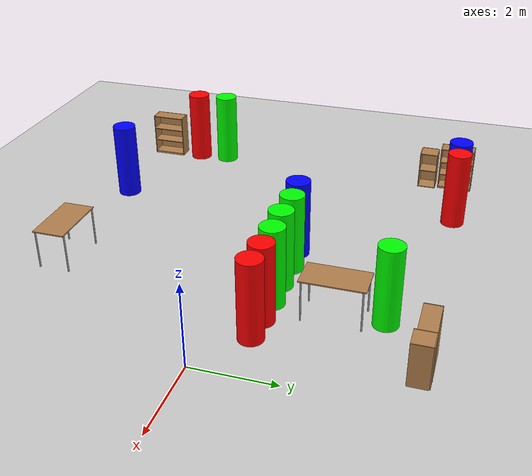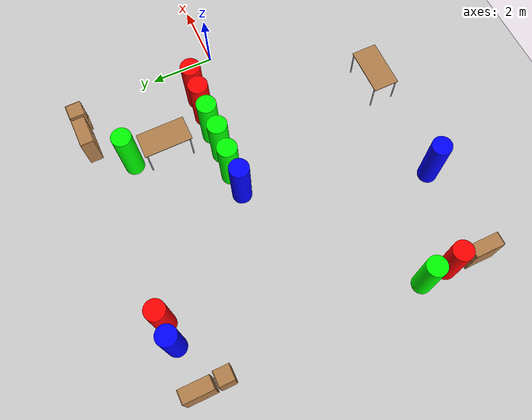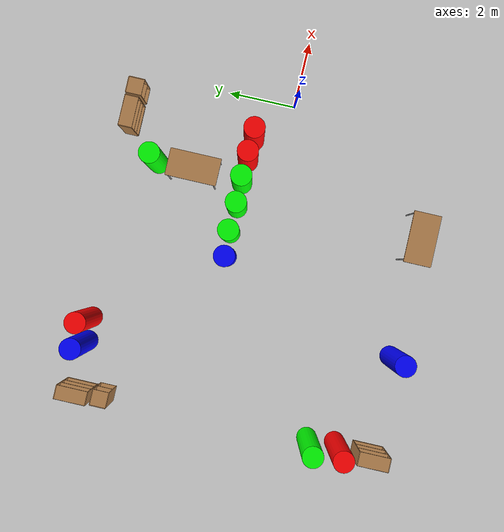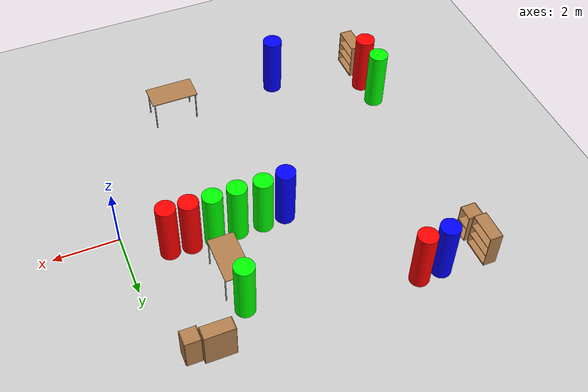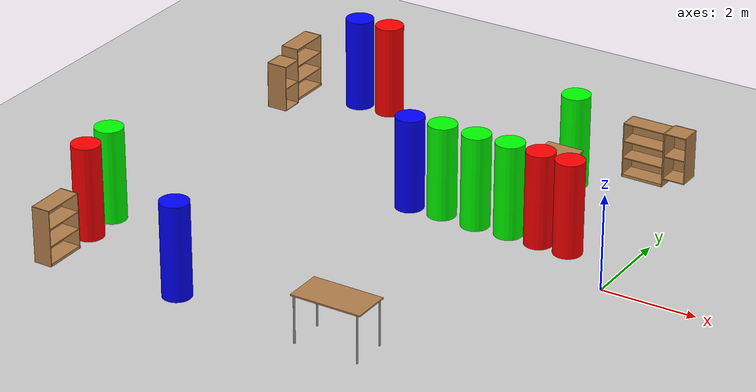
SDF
<sdf version="1.6">
 <world name="default">
  <model name="ground_plane">
   <static>1</static>
   <link name="link">
    <collision name="collision">
     <geometry><plane><normal>0 0 1</normal><size>100 100</size></plane></geometry>
     <surface>
      <contact><collide_bitmask>65535</collide_bitmask></contact>
      <friction><ode><mu>100</mu><mu2>50</mu2></ode></friction>
     </surface>
    </collision>
    <visual name="visual">
     <cast_shadows>0</cast_shadows>
     <geometry><plane><normal>0 0 1</normal><size>100 100</size></plane></geometry>
     <material>
      <script><uri>file://media/materials/scripts/gazebo.material</uri><name>Gazebo/Grey</name></script>
     </material>
    </visual>
   </link>
  </model>
  <model name="bookshelf0">
   <static>1</static>
   <link name="link">
    <inertial><mass>1</mass></inertial>
    <collision name="back">
     <pose>0 0.005 0.6 0 -0 0</pose>
     <geometry><box><size>0.9 0.01 1.2</size></box></geometry>
    </collision>
    <visual name="visual1">
     <pose>0 0.005 0.6 0 -0 0</pose>
     <geometry><box><size>0.9 0.01 1.2</size></box></geometry>
     <material>
      <script><uri>file://media/materials/scripts/gazebo.material</uri><name>Gazebo/Wood</name></script>
     </material>
    </visual>
    <collision name="left_side">
     <pose>0.45 -0.195 0.6 0 -0 0</pose>
     <geometry><box><size>0.02 0.4 1.2</size></box></geometry>
    </collision>
    <visual name="visual2">
     <pose>0.45 -0.195 0.6 0 -0 0</pose>
     <geometry><box><size>0.02 0.4 1.2</size></box></geometry>
     <material>
      <script><uri>file://media/materials/scripts/gazebo.material</uri><name>Gazebo/Wood</name></script>
     </material>
    </visual>
    <collision name="right_side">
     <pose>-0.45 -0.195 0.6 0 -0 0</pose>
     <geometry><box><size>0.02 0.4 1.2</size></box></geometry>
    </collision>
    <visual name="visual3">
     <pose>-0.45 -0.195 0.6 0 -0 0</pose>
     <geometry><box><size>0.02 0.4 1.2</size></box></geometry>
     <material>
      <script><uri>file://media/materials/scripts/gazebo.material</uri><name>Gazebo/Wood</name></script>
     </material>
    </visual>
    <collision name="bottom">
     <pose>0 -0.195 0.03 0 -0 0</pose>
     <geometry><box><size>0.88 0.4 0.06</size></box></geometry>
    </collision>
    <visual name="visual4">
     <pose>0 -0.195 0.03 0 -0 0</pose>
     <geometry><box><size>0.88 0.4 0.06</size></box></geometry>
     <material>
      <script><uri>file://media/materials/scripts/gazebo.material</uri><name>Gazebo/Wood</name></script>
     </material>
    </visual>
    <collision name="top">
     <pose>0 -0.195 1.19 0 -0 0</pose>
     <geometry><box><size>0.88 0.4 0.02</size></box></geometry>
    </collision>
    <visual name="visual5">
     <pose>0 -0.195 1.19 0 -0 0</pose>
     <geometry><box><size>0.88 0.4 0.02</size></box></geometry>
     <material>
      <script><uri>file://media/materials/scripts/gazebo.material</uri><name>Gazebo/Wood</name></script>
     </material>
    </visual>
    <collision name="low_shelf">
     <pose>0 -0.195 0.43 0 -0 0</pose>
     <geometry><box><size>0.88 0.4 0.02</size></box></geometry>
    </collision>
    <visual name="visual6">
     <pose>0 -0.195 0.43 0 -0 0</pose>
     <geometry><box><size>0.88 0.4 0.02</size></box></geometry>
     <material>
      <script><uri>file://media/materials/scripts/gazebo.material</uri><name>Gazebo/Wood</name></script>
     </material>
    </visual>
    <collision name="high_shelf">
     <pose>0 -0.195 0.8 0 -0 0</pose>
     <geometry><box><size>0.88 0.4 0.02</size></box></geometry>
    </collision>
    <visual name="visual7">
     <pose>0 -0.195 0.8 0 -0 0</pose>
     <geometry><box><size>0.88 0.4 0.02</size></box></geometry>
     <material>
      <script><uri>file://media/materials/scripts/gazebo.material</uri><name>Gazebo/Wood</name></script>
     </material>
    </visual>
   </link>
   <pose>-9.72657 -4.37218 0 0 -0 1.5708</pose>
  </model>
  <model name="bookshelf1">
   <static>1</static>
   <link name="link">
    <inertial><mass>1</mass></inertial>
    <collision name="back">
     <pose>0 0.005 0.6 0 -0 0</pose>
     <geometry><box><size>0.9 0.01 1.2</size></box></geometry>
    </collision>
    <visual name="visual1">
     <pose>0 0.005 0.6 0 -0 0</pose>
     <geometry><box><size>0.9 0.01 1.2</size></box></geometry>
     <material>
      <script><uri>file://media/materials/scripts/gazebo.material</uri><name>Gazebo/Wood</name></script>
     </material>
    </visual>
    <collision name="left_side">
     <pose>0.45 -0.195 0.6 0 -0 0</pose>
     <geometry><box><size>0.02 0.4 1.2</size></box></geometry>
    </collision>
    <visual name="visual2">
     <pose>0.45 -0.195 0.6 0 -0 0</pose>
     <geometry><box><size>0.02 0.4 1.2</size></box></geometry>
     <material>
      <script><uri>file://media/materials/scripts/gazebo.material</uri><name>Gazebo/Wood</name></script>
     </material>
    </visual>
    <collision name="right_side">
     <pose>-0.45 -0.195 0.6 0 -0 0</pose>
     <geometry><box><size>0.02 0.4 1.2</size></box></geometry>
    </collision>
    <visual name="visual3">
     <pose>-0.45 -0.195 0.6 0 -0 0</pose>
     <geometry><box><size>0.02 0.4 1.2</size></box></geometry>
     <material>
      <script><uri>file://media/materials/scripts/gazebo.material</uri><name>Gazebo/Wood</name></script>
     </material>
    </visual>
    <collision name="bottom">
     <pose>0 -0.195 0.03 0 -0 0</pose>
     <geometry><box><size>0.88 0.4 0.06</size></box></geometry>
    </collision>
    <visual name="visual4">
     <pose>0 -0.195 0.03 0 -0 0</pose>
     <geometry><box><size>0.88 0.4 0.06</size></box></geometry>
     <material>
      <script><uri>file://media/materials/scripts/gazebo.material</uri><name>Gazebo/Wood</name></script>
     </material>
    </visual>
    <collision name="top">
     <pose>0 -0.195 1.19 0 -0 0</pose>
     <geometry><box><size>0.88 0.4 0.02</size></box></geometry>
    </collision>
    <visual name="visual5">
     <pose>0 -0.195 1.19 0 -0 0</pose>
     <geometry><box><size>0.88 0.4 0.02</size></box></geometry>
     <material>
      <script><uri>file://media/materials/scripts/gazebo.material</uri><name>Gazebo/Wood</name></script>
     </material>
    </visual>
    <collision name="low_shelf">
     <pose>0 -0.195 0.43 0 -0 0</pose>
     <geometry><box><size>0.88 0.4 0.02</size></box></geometry>
    </collision>
    <visual name="visual6">
     <pose>0 -0.195 0.43 0 -0 0</pose>
     <geometry><box><size>0.88 0.4 0.02</size></box></geometry>
     <material>
      <script><uri>file://media/materials/scripts/gazebo.material</uri><name>Gazebo/Wood</name></script>
     </material>
    </visual>
    <collision name="high_shelf">
     <pose>0 -0.195 0.8 0 -0 0</pose>
     <geometry><box><size>0.88 0.4 0.02</size></box></geometry>
    </collision>
    <visual name="visual7">
     <pose>0 -0.195 0.8 0 -0 0</pose>
     <geometry><box><size>0.88 0.4 0.02</size></box></geometry>
     <material>
      <script><uri>file://media/materials/scripts/gazebo.material</uri><name>Gazebo/Wood</name></script>
     </material>
    </visual>
   </link>
   <pose>-1.44327 4.80493 0 0 -0 4e-06</pose>
  </model>
  <model name="bookshelf4">
   <static>1</static>
   <link name="link">
    <inertial><mass>1</mass></inertial>
    <collision name="back">
     <pose>0 0.005 0.6 0 -0 0</pose>
     <geometry><box><size>0.9 0.01 1.2</size></box></geometry>
    </collision>
    <visual name="visual1">
     <pose>0 0.005 0.6 0 -0 0</pose>
     <geometry><box><size>0.9 0.01 1.2</size></box></geometry>
     <material>
      <script><uri>file://media/materials/scripts/gazebo.material</uri><name>Gazebo/Wood</name></script>
     </material>
    </visual>
    <collision name="left_side">
     <pose>0.45 -0.195 0.6 0 -0 0</pose>
     <geometry><box><size>0.02 0.4 1.2</size></box></geometry>
    </collision>
    <visual name="visual2">
     <pose>0.45 -0.195 0.6 0 -0 0</pose>
     <geometry><box><size>0.02 0.4 1.2</size></box></geometry>
     <material>
      <script><uri>file://media/materials/scripts/gazebo.material</uri><name>Gazebo/Wood</name></script>
     </material>
    </visual>
    <collision name="right_side">
     <pose>-0.45 -0.195 0.6 0 -0 0</pose>
     <geometry><box><size>0.02 0.4 1.2</size></box></geometry>
    </collision>
    <visual name="visual3">
     <pose>-0.45 -0.195 0.6 0 -0 0</pose>
     <geometry><box><size>0.02 0.4 1.2</size></box></geometry>
     <material>
      <script><uri>file://media/materials/scripts/gazebo.material</uri><name>Gazebo/Wood</name></script>
     </material>
    </visual>
    <collision name="bottom">
     <pose>0 -0.195 0.03 0 -0 0</pose>
     <geometry><box><size>0.88 0.4 0.06</size></box></geometry>
    </collision>
    <visual name="visual4">
     <pose>0 -0.195 0.03 0 -0 0</pose>
     <geometry><box><size>0.88 0.4 0.06</size></box></geometry>
     <material>
      <script><uri>file://media/materials/scripts/gazebo.material</uri><name>Gazebo/Wood</name></script>
     </material>
    </visual>
    <collision name="top">
     <pose>0 -0.195 1.19 0 -0 0</pose>
     <geometry><box><size>0.88 0.4 0.02</size></box></geometry>
    </collision>
    <visual name="visual5">
     <pose>0 -0.195 1.19 0 -0 0</pose>
     <geometry><box><size>0.88 0.4 0.02</size></box></geometry>
     <material>
      <script><uri>file://media/materials/scripts/gazebo.material</uri><name>Gazebo/Wood</name></script>
     </material>
    </visual>
    <collision name="low_shelf">
     <pose>0 -0.195 0.43 0 -0 0</pose>
     <geometry><box><size>0.88 0.4 0.02</size></box></geometry>
    </collision>
    <visual name="visual6">
     <pose>0 -0.195 0.43 0 -0 0</pose>
     <geometry><box><size>0.88 0.4 0.02</size></box></geometry>
     <material>
      <script><uri>file://media/materials/scripts/gazebo.material</uri><name>Gazebo/Wood</name></script>
     </material>
    </visual>
    <collision name="high_shelf">
     <pose>0 -0.195 0.8 0 -0 0</pose>
     <geometry><box><size>0.88 0.4 0.02</size></box></geometry>
    </collision>
    <visual name="visual7">
     <pose>0 -0.195 0.8 0 -0 0</pose>
     <geometry><box><size>0.88 0.4 0.02</size></box></geometry>
     <material>
      <script><uri>file://media/materials/scripts/gazebo.material</uri><name>Gazebo/Wood</name></script>
     </material>
    </visual>
   </link>
   <pose>-9.82487 4.34326 0 0 -0 1.5708</pose>
  </model>
  <model name="cabinet3">
   <static>1</static>
   <link name="cabinet_bottom_plate">
    <inertial>
     <pose>0 0 -1 0 -0 0</pose>
     <inertia><ixx>2.05</ixx><ixy>0</ixy><ixz>0</ixz><iyy>2.05</iyy><iyz>0</iyz><izz>2.05</izz></inertia>
     <mass>25</mass>
    </inertial>
    <collision name="cabinet_bottom_plate_geom">
     <pose>0 0 0.01 0 -0 0</pose>
     <geometry><box><size>0.45 0.45 0.02</size></box></geometry>
    </collision>
    <visual name="cabinet_bottom_plate_geom_visual">
     <pose>0 0 0.01 0 -0 0</pose>
     <geometry><box><size>0.45 0.45 0.02</size></box></geometry>
     <material>
      <script><uri>file://media/materials/scripts/gazebo.material</uri><name>Gazebo/Wood</name></script>
     </material>
    </visual>
    <collision name="cabinet_bottom_plate_geom_cabinet_back_plate">
     <pose>0.235 0 0.51 0 -0 0</pose>
     <geometry><box><size>0.02 0.45 1.02</size></box></geometry>
    </collision>
    <visual name="cabinet_bottom_plate_geom_cabinet_back_plate_visual">
     <pose>0.235 0 0.51 0 -0 0</pose>
     <geometry><box><size>0.02 0.45 1.02</size></box></geometry>
     <material>
      <script><uri>file://media/materials/scripts/gazebo.material</uri><name>Gazebo/Wood</name></script>
     </material>
    </visual>
    <collision name="cabinet_bottom_plate_geom_cabinet_left_plate">
     <pose>0 0.235 0.51 0 -0 0</pose>
     <geometry><box><size>0.45 0.02 1.02</size></box></geometry>
    </collision>
    <visual name="cabinet_bottom_plate_geom_cabinet_left_plate_visual">
     <pose>0 0.235 0.51 0 -0 0</pose>
     <geometry><box><size>0.45 0.02 1.02</size></box></geometry>
     <material>
      <script><uri>file://media/materials/scripts/gazebo.material</uri><name>Gazebo/Wood</name></script>
     </material>
    </visual>
    <collision name="cabinet_bottom_plate_geom_cabinet_middle_plate">
     <pose>0 0 0.51 0 -0 0</pose>
     <geometry><box><size>0.45 0.45 0.02</size></box></geometry>
    </collision>
    <visual name="cabinet_bottom_plate_geom_cabinet_middle_plate_visual">
     <pose>0 0 0.51 0 -0 0</pose>
     <geometry><box><size>0.45 0.45 0.02</size></box></geometry>
     <material>
      <script><uri>file://media/materials/scripts/gazebo.material</uri><name>Gazebo/Wood</name></script>
     </material>
    </visual>
    <collision name="cabinet_bottom_plate_geom_cabinet_right_plate">
     <pose>0 -0.235 0.51 0 -0 0</pose>
     <geometry><box><size>0.45 0.02 1.02</size></box></geometry>
    </collision>
    <visual name="cabinet_bottom_plate_geom_cabinet_right_plate_visual">
     <pose>0 -0.235 0.51 0 -0 0</pose>
     <geometry><box><size>0.45 0.02 1.02</size></box></geometry>
     <material>
      <script><uri>file://media/materials/scripts/gazebo.material</uri><name>Gazebo/Wood</name></script>
     </material>
    </visual>
    <collision name="cabinet_bottom_plate_geom_cabinet_top_plate">
     <pose>0 0 1.01 0 -0 0</pose>
     <geometry><box><size>0.45 0.45 0.02</size></box></geometry>
    </collision>
    <visual name="cabinet_bottom_plate_geom_cabinet_top_plate_visual">
     <pose>0 0 1.01 0 -0 0</pose>
     <geometry><box><size>0.45 0.45 0.02</size></box></geometry>
     <material>
      <script><uri>file://media/materials/scripts/gazebo.material</uri><name>Gazebo/Wood</name></script>
     </material>
    </visual>
   </link>
   <pose>-9.58857 3.57077 0 0 0 -3.14159</pose>
  </model>
  <model name="cabinet4">
   <static>1</static>
   <link name="cabinet_bottom_plate">
    <inertial>
     <pose>0 0 -1 0 -0 0</pose>
     <inertia><ixx>2.05</ixx><ixy>0</ixy><ixz>0</ixz><iyy>2.05</iyy><iyz>0</iyz><izz>2.05</izz></inertia>
     <mass>25</mass>
    </inertial>
    <collision name="cabinet_bottom_plate_geom">
     <pose>0 0 0.01 0 -0 0</pose>
     <geometry><box><size>0.45 0.45 0.02</size></box></geometry>
    </collision>
    <visual name="cabinet_bottom_plate_geom_visual">
     <pose>0 0 0.01 0 -0 0</pose>
     <geometry><box><size>0.45 0.45 0.02</size></box></geometry>
     <material>
      <script><uri>file://media/materials/scripts/gazebo.material</uri><name>Gazebo/Wood</name></script>
     </material>
    </visual>
    <collision name="cabinet_bottom_plate_geom_cabinet_back_plate">
     <pose>0.235 0 0.51 0 -0 0</pose>
     <geometry><box><size>0.02 0.45 1.02</size></box></geometry>
    </collision>
    <visual name="cabinet_bottom_plate_geom_cabinet_back_plate_visual">
     <pose>0.235 0 0.51 0 -0 0</pose>
     <geometry><box><size>0.02 0.45 1.02</size></box></geometry>
     <material>
      <script><uri>file://media/materials/scripts/gazebo.material</uri><name>Gazebo/Wood</name></script>
     </material>
    </visual>
    <collision name="cabinet_bottom_plate_geom_cabinet_left_plate">
     <pose>0 0.235 0.51 0 -0 0</pose>
     <geometry><box><size>0.45 0.02 1.02</size></box></geometry>
    </collision>
    <visual name="cabinet_bottom_plate_geom_cabinet_left_plate_visual">
     <pose>0 0.235 0.51 0 -0 0</pose>
     <geometry><box><size>0.45 0.02 1.02</size></box></geometry>
     <material>
      <script><uri>file://media/materials/scripts/gazebo.material</uri><name>Gazebo/Wood</name></script>
     </material>
    </visual>
    <collision name="cabinet_bottom_plate_geom_cabinet_middle_plate">
     <pose>0 0 0.51 0 -0 0</pose>
     <geometry><box><size>0.45 0.45 0.02</size></box></geometry>
    </collision>
    <visual name="cabinet_bottom_plate_geom_cabinet_middle_plate_visual">
     <pose>0 0 0.51 0 -0 0</pose>
     <geometry><box><size>0.45 0.45 0.02</size></box></geometry>
     <material>
      <script><uri>file://media/materials/scripts/gazebo.material</uri><name>Gazebo/Wood</name></script>
     </material>
    </visual>
    <collision name="cabinet_bottom_plate_geom_cabinet_right_plate">
     <pose>0 -0.235 0.51 0 -0 0</pose>
     <geometry><box><size>0.45 0.02 1.02</size></box></geometry>
    </collision>
    <visual name="cabinet_bottom_plate_geom_cabinet_right_plate_visual">
     <pose>0 -0.235 0.51 0 -0 0</pose>
     <geometry><box><size>0.45 0.02 1.02</size></box></geometry>
     <material>
      <script><uri>file://media/materials/scripts/gazebo.material</uri><name>Gazebo/Wood</name></script>
     </material>
    </visual>
    <collision name="cabinet_bottom_plate_geom_cabinet_top_plate">
     <pose>0 0 1.01 0 -0 0</pose>
     <geometry><box><size>0.45 0.45 0.02</size></box></geometry>
    </collision>
    <visual name="cabinet_bottom_plate_geom_cabinet_top_plate_visual">
     <pose>0 0 1.01 0 -0 0</pose>
     <geometry><box><size>0.45 0.45 0.02</size></box></geometry>
     <material>
      <script><uri>file://media/materials/scripts/gazebo.material</uri><name>Gazebo/Wood</name></script>
     </material>
    </visual>
   </link>
   <pose>-0.709182 4.57421 0.217313 0 -0 1.5708</pose>
  </model>
  <model name="table0">
   <static>1</static>
   <link name="link">
    <collision name="surface">
     <pose>0 0 1 0 -0 0</pose>
     <geometry><box><size>1.5 0.8 0.03</size></box></geometry>
     <surface><friction><ode><mu>0.6</mu><mu2>0.6</mu2></ode></friction></surface>
    </collision>
    <visual name="visual1">
     <pose>0 0 1 0 -0 0</pose>
     <geometry><box><size>1.5 0.8 0.03</size></box></geometry>
     <material>
      <script><uri>file://media/materials/scripts/gazebo.material</uri><name>Gazebo/Wood</name></script>
     </material>
    </visual>
    <collision name="front_left_leg">
     <pose>0.68 0.38 0.5 0 -0 0</pose>
     <geometry><cylinder><radius>0.02</radius><length>1</length></cylinder></geometry>
    </collision>
    <visual name="front_left_leg">
     <pose>0.68 0.38 0.5 0 -0 0</pose>
     <geometry><cylinder><radius>0.02</radius><length>1</length></cylinder></geometry>
     <material>
      <script><uri>file://media/materials/scripts/gazebo.material</uri><name>Gazebo/Grey</name></script>
     </material>
    </visual>
    <collision name="front_right_leg">
     <pose>0.68 -0.38 0.5 0 -0 0</pose>
     <geometry><cylinder><radius>0.02</radius><length>1</length></cylinder></geometry>
    </collision>
    <visual name="front_right_leg">
     <pose>0.68 -0.38 0.5 0 -0 0</pose>
     <geometry><cylinder><radius>0.02</radius><length>1</length></cylinder></geometry>
     <material>
      <script><uri>file://media/materials/scripts/gazebo.material</uri><name>Gazebo/Grey</name></script>
     </material>
    </visual>
    <collision name="back_right_leg">
     <pose>-0.68 -0.38 0.5 0 -0 0</pose>
     <geometry><cylinder><radius>0.02</radius><length>1</length></cylinder></geometry>
    </collision>
    <visual name="back_right_leg">
     <pose>-0.68 -0.38 0.5 0 -0 0</pose>
     <geometry><cylinder><radius>0.02</radius><length>1</length></cylinder></geometry>
     <material>
      <script><uri>file://media/materials/scripts/gazebo.material</uri><name>Gazebo/Grey</name></script>
     </material>
    </visual>
    <collision name="back_left_leg">
     <pose>-0.68 0.38 0.5 0 -0 0</pose>
     <geometry><cylinder><radius>0.02</radius><length>1</length></cylinder></geometry>
    </collision>
    <visual name="back_left_leg">
     <pose>-0.68 0.38 0.5 0 -0 0</pose>
     <geometry><cylinder><radius>0.02</radius><length>1</length></cylinder></geometry>
     <material>
      <script><uri>file://media/materials/scripts/gazebo.material</uri><name>Gazebo/Grey</name></script>
     </material>
    </visual>
   </link>
   <pose>-3.10587 -4.3899 0 0 -0 0</pose>
  </model>
  <model name="table2">
   <static>1</static>
   <link name="link">
    <collision name="surface">
     <pose>0 0 1 0 -0 0</pose>
     <geometry><box><size>1.5 0.8 0.03</size></box></geometry>
     <surface><friction><ode><mu>0.6</mu><mu2>0.6</mu2></ode></friction></surface>
    </collision>
    <visual name="visual1">
     <pose>0 0 1 0 -0 0</pose>
     <geometry><box><size>1.5 0.8 0.03</size></box></geometry>
     <material>
      <script><uri>file://media/materials/scripts/gazebo.material</uri><name>Gazebo/Wood</name></script>
     </material>
    </visual>
    <collision name="front_left_leg">
     <pose>0.68 0.38 0.5 0 -0 0</pose>
     <geometry><cylinder><radius>0.02</radius><length>1</length></cylinder></geometry>
    </collision>
    <visual name="front_left_leg">
     <pose>0.68 0.38 0.5 0 -0 0</pose>
     <geometry><cylinder><radius>0.02</radius><length>1</length></cylinder></geometry>
     <material>
      <script><uri>file://media/materials/scripts/gazebo.material</uri><name>Gazebo/Grey</name></script>
     </material>
    </visual>
    <collision name="front_right_leg">
     <pose>0.68 -0.38 0.5 0 -0 0</pose>
     <geometry><cylinder><radius>0.02</radius><length>1</length></cylinder></geometry>
    </collision>
    <visual name="front_right_leg">
     <pose>0.68 -0.38 0.5 0 -0 0</pose>
     <geometry><cylinder><radius>0.02</radius><length>1</length></cylinder></geometry>
     <material>
      <script><uri>file://media/materials/scripts/gazebo.material</uri><name>Gazebo/Grey</name></script>
     </material>
    </visual>
    <collision name="back_right_leg">
     <pose>-0.68 -0.38 0.5 0 -0 0</pose>
     <geometry><cylinder><radius>0.02</radius><length>1</length></cylinder></geometry>
    </collision>
    <visual name="back_right_leg">
     <pose>-0.68 -0.38 0.5 0 -0 0</pose>
     <geometry><cylinder><radius>0.02</radius><length>1</length></cylinder></geometry>
     <material>
      <script><uri>file://media/materials/scripts/gazebo.material</uri><name>Gazebo/Grey</name></script>
     </material>
    </visual>
    <collision name="back_left_leg">
     <pose>-0.68 0.38 0.5 0 -0 0</pose>
     <geometry><cylinder><radius>0.02</radius><length>1</length></cylinder></geometry>
    </collision>
    <visual name="back_left_leg">
     <pose>-0.68 0.38 0.5 0 -0 0</pose>
     <geometry><cylinder><radius>0.02</radius><length>1</length></cylinder></geometry>
     <material>
      <script><uri>file://media/materials/scripts/gazebo.material</uri><name>Gazebo/Grey</name></script>
     </material>
    </visual>
   </link>
   <pose>-2.56034 2.47234 0 0 -0 1.5708</pose>
  </model>
  <model name="red0">
   <link name="link">
    <pose>-0.202221 0.506091 0 0 -0 0</pose>
    <inertial>
     <mass>1</mass>
     <inertia><ixx>0.145833</ixx><ixy>0</ixy><ixz>0</ixz><iyy>0.145833</iyy><iyz>0</iyz><izz>0.125</izz></inertia>
    </inertial>
    <visual name="visual">
     <geometry><cylinder><radius>0.3</radius><length>2</length></cylinder></geometry>
     <material>
      <script><name>Gazebo/Grey</name><uri>file://media/materials/scripts/gazebo.material</uri></script>
      <ambient>1 0 0 1</ambient>
      <diffuse>0.7 0.7 0.7 1</diffuse>
      <specular>0.01 0.01 0.01 1</specular>
      <emissive>0 0 0 1</emissive>
      <shader type="vertex"><normal_map>__default__</normal_map></shader>
     </material>
    </visual>
    <collision name="collision">
     <geometry><cylinder><radius>0.3</radius><length>2</length></cylinder></geometry>
     <surface>
      <friction>
       <ode><mu>1</mu><mu2>1</mu2><fdir1>0 0 0</fdir1><slip1>0</slip1><slip2>0</slip2></ode>
       <torsional>
        <coefficient>1</coefficient>
        <patch_radius>0</patch_radius>
        <surface_radius>0</surface_radius>
        <use_patch_radius>1</use_patch_radius>
        <ode><slip>0</slip></ode>
       </torsional>
      </friction>
      <bounce><restitution_coefficient>0</restitution_coefficient><threshold>1e+06</threshold></bounce>
      <contact>
       <collide_without_contact>0</collide_without_contact>
       <collide_without_contact_bitmask>1</collide_without_contact_bitmask>
       <collide_bitmask>1</collide_bitmask>
       <ode>
        <soft_cfm>0</soft_cfm>
        <soft_erp>0.2</soft_erp>
        <kp>1e+13</kp>
        <kd>1</kd>
        <max_vel>0.01</max_vel>
        <min_depth>0</min_depth>
       </ode>
       <bullet>
        <split_impulse>1</split_impulse>
        <split_impulse_penetration_threshold>-0.01</split_impulse_penetration_threshold>
        <soft_cfm>0</soft_cfm>
        <soft_erp>0.2</soft_erp>
        <kp>1e+13</kp>
        <kd>1</kd>
       </bullet>
      </contact>
     </surface>
    </collision>
   </link>
   <static>0</static>
   <pose>-1.05722 0.467521 0.999991 0 -0 2e-05</pose>
  </model>
  <model name="red1">
   <link name="link">
    <pose>-0.202221 0.506091 0 0 -0 0</pose>
    <inertial>
     <mass>1</mass>
     <inertia><ixx>0.145833</ixx><ixy>0</ixy><ixz>0</ixz><iyy>0.145833</iyy><iyz>0</iyz><izz>0.125</izz></inertia>
    </inertial>
    <visual name="visual">
     <geometry><cylinder><radius>0.3</radius><length>2</length></cylinder></geometry>
     <material>
      <script><name>Gazebo/Grey</name><uri>file://media/materials/scripts/gazebo.material</uri></script>
      <ambient>1 0 0 1</ambient>
      <diffuse>0.7 0.7 0.7 1</diffuse>
      <specular>0.01 0.01 0.01 1</specular>
      <emissive>0 0 0 1</emissive>
      <shader type="vertex"><normal_map>__default__</normal_map></shader>
     </material>
    </visual>
    <collision name="collision">
     <geometry><cylinder><radius>0.3</radius><length>2</length></cylinder></geometry>
     <surface>
      <friction>
       <ode><mu>1</mu><mu2>1</mu2><fdir1>0 0 0</fdir1><slip1>0</slip1><slip2>0</slip2></ode>
       <torsional>
        <coefficient>1</coefficient>
        <patch_radius>0</patch_radius>
        <surface_radius>0</surface_radius>
        <use_patch_radius>1</use_patch_radius>
        <ode><slip>0</slip></ode>
       </torsional>
      </friction>
      <bounce><restitution_coefficient>0</restitution_coefficient><threshold>1e+06</threshold></bounce>
      <contact>
       <collide_without_contact>0</collide_without_contact>
       <collide_without_contact_bitmask>1</collide_without_contact_bitmask>
       <collide_bitmask>1</collide_bitmask>
       <ode>
        <soft_cfm>0</soft_cfm>
        <soft_erp>0.2</soft_erp>
        <kp>1e+13</kp>
        <kd>1</kd>
        <max_vel>0.01</max_vel>
        <min_depth>0</min_depth>
       </ode>
       <bullet>
        <split_impulse>1</split_impulse>
        <split_impulse_penetration_threshold>-0.01</split_impulse_penetration_threshold>
        <soft_cfm>0</soft_cfm>
        <soft_erp>0.2</soft_erp>
        <kp>1e+13</kp>
        <kd>1</kd>
       </bullet>
      </contact>
     </surface>
    </collision>
   </link>
   <static>0</static>
   <pose>-1.71762 0.500471 0.999991 0 -0 7e-06</pose>
  </model>
  <model name="red2">
   <link name="link">
    <pose>-0.202221 0.506091 0 0 -0 0</pose>
    <inertial>
     <mass>1</mass>
     <inertia><ixx>0.145833</ixx><ixy>0</ixy><ixz>0</ixz><iyy>0.145833</iyy><iyz>0</iyz><izz>0.125</izz></inertia>
    </inertial>
    <visual name="visual">
     <geometry><cylinder><radius>0.3</radius><length>2</length></cylinder></geometry>
     <material>
      <script><name>Gazebo/Grey</name><uri>file://media/materials/scripts/gazebo.material</uri></script>
      <ambient>1 0 0 1</ambient>
      <diffuse>0.7 0.7 0.7 1</diffuse>
      <specular>0.01 0.01 0.01 1</specular>
      <emissive>0 0 0 1</emissive>
      <shader type="vertex"><normal_map>__default__</normal_map></shader>
     </material>
    </visual>
    <collision name="collision">
     <geometry><cylinder><radius>0.3</radius><length>2</length></cylinder></geometry>
     <surface>
      <friction>
       <ode><mu>1</mu><mu2>1</mu2><fdir1>0 0 0</fdir1><slip1>0</slip1><slip2>0</slip2></ode>
       <torsional>
        <coefficient>1</coefficient>
        <patch_radius>0</patch_radius>
        <surface_radius>0</surface_radius>
        <use_patch_radius>1</use_patch_radius>
        <ode><slip>0</slip></ode>
       </torsional>
      </friction>
      <bounce><restitution_coefficient>0</restitution_coefficient><threshold>1e+06</threshold></bounce>
      <contact>
       <collide_without_contact>0</collide_without_contact>
       <collide_without_contact_bitmask>1</collide_without_contact_bitmask>
       <collide_bitmask>1</collide_bitmask>
       <ode>
        <soft_cfm>0</soft_cfm>
        <soft_erp>0.2</soft_erp>
        <kp>1e+13</kp>
        <kd>1</kd>
        <max_vel>0.01</max_vel>
        <min_depth>0</min_depth>
       </ode>
       <bullet>
        <split_impulse>1</split_impulse>
        <split_impulse_penetration_threshold>-0.01</split_impulse_penetration_threshold>
        <soft_cfm>0</soft_cfm>
        <soft_erp>0.2</soft_erp>
        <kp>1e+13</kp>
        <kd>1</kd>
       </bullet>
      </contact>
     </surface>
    </collision>
   </link>
   <static>0</static>
   <pose>-9.30105 -3.88425 0.999991 0 -0 1.6e-05</pose>
  </model>
  <model name="red3">
   <link name="link">
    <pose>-0.202221 0.506091 0 0 -0 0</pose>
    <inertial>
     <mass>1</mass>
     <inertia><ixx>0.145833</ixx><ixy>0</ixy><ixz>0</ixz><iyy>0.145833</iyy><iyz>0</iyz><izz>0.125</izz></inertia>
    </inertial>
    <visual name="visual">
     <geometry><cylinder><radius>0.3</radius><length>2</length></cylinder></geometry>
     <material>
      <script><name>Gazebo/Grey</name><uri>file://media/materials/scripts/gazebo.material</uri></script>
      <ambient>1 0 0 1</ambient>
      <diffuse>0.7 0.7 0.7 1</diffuse>
      <specular>0.01 0.01 0.01 1</specular>
      <emissive>0 0 0 1</emissive>
      <shader type="vertex"><normal_map>__default__</normal_map></shader>
     </material>
    </visual>
    <collision name="collision">
     <geometry><cylinder><radius>0.3</radius><length>2</length></cylinder></geometry>
     <surface>
      <friction>
       <ode><mu>1</mu><mu2>1</mu2><fdir1>0 0 0</fdir1><slip1>0</slip1><slip2>0</slip2></ode>
       <torsional>
        <coefficient>1</coefficient>
        <patch_radius>0</patch_radius>
        <surface_radius>0</surface_radius>
        <use_patch_radius>1</use_patch_radius>
        <ode><slip>0</slip></ode>
       </torsional>
      </friction>
      <bounce><restitution_coefficient>0</restitution_coefficient><threshold>1e+06</threshold></bounce>
      <contact>
       <collide_without_contact>0</collide_without_contact>
       <collide_without_contact_bitmask>1</collide_without_contact_bitmask>
       <collide_bitmask>1</collide_bitmask>
       <ode>
        <soft_cfm>0</soft_cfm>
        <soft_erp>0.2</soft_erp>
        <kp>1e+13</kp>
        <kd>1</kd>
        <max_vel>0.01</max_vel>
        <min_depth>0</min_depth>
       </ode>
       <bullet>
        <split_impulse>1</split_impulse>
        <split_impulse_penetration_threshold>-0.01</split_impulse_penetration_threshold>
        <soft_cfm>0</soft_cfm>
        <soft_erp>0.2</soft_erp>
        <kp>1e+13</kp>
        <kd>1</kd>
       </bullet>
      </contact>
     </surface>
    </collision>
   </link>
   <static>0</static>
   <pose>-7.30915 3.99509 0.999991 0 -0 5e-06</pose>
  </model>
  <model name="green0">
   <link name="link">
    <inertial>
     <mass>1</mass>
     <inertia><ixx>0.145833</ixx><ixy>0</ixy><ixz>0</ixz><iyy>0.145833</iyy><iyz>0</iyz><izz>0.125</izz></inertia>
    </inertial>
    <visual name="visual">
     <geometry><cylinder><radius>0.3</radius><length>2</length></cylinder></geometry>
     <material>
      <script><name>Gazebo/Grey</name><uri>file://media/materials/scripts/gazebo.material</uri></script>
      <ambient>0 1 0 1</ambient>
      <diffuse>0.7 0.7 0.7 1</diffuse>
      <specular>0.01 0.01 0.01 1</specular>
      <emissive>0 0 0 1</emissive>
      <shader type="vertex"><normal_map>__default__</normal_map></shader>
     </material>
    </visual>
    <collision name="collision">
     <geometry><cylinder><radius>0.3</radius><length>2</length></cylinder></geometry>
     <surface>
      <friction>
       <ode><mu>1</mu><mu2>1</mu2><fdir1>0 0 0</fdir1><slip1>0</slip1><slip2>0</slip2></ode>
       <torsional>
        <coefficient>1</coefficient>
        <patch_radius>0</patch_radius>
        <surface_radius>0</surface_radius>
        <use_patch_radius>1</use_patch_radius>
        <ode><slip>0</slip></ode>
       </torsional>
      </friction>
      <bounce><restitution_coefficient>0</restitution_coefficient><threshold>1e+06</threshold></bounce>
      <contact>
       <collide_without_contact>0</collide_without_contact>
       <collide_without_contact_bitmask>1</collide_without_contact_bitmask>
       <collide_bitmask>1</collide_bitmask>
       <ode>
        <soft_cfm>0</soft_cfm>
        <soft_erp>0.2</soft_erp>
        <kp>1e+13</kp>
        <kd>1</kd>
        <max_vel>0.01</max_vel>
        <min_depth>0</min_depth>
       </ode>
       <bullet>
        <split_impulse>1</split_impulse>
        <split_impulse_penetration_threshold>-0.01</split_impulse_penetration_threshold>
        <soft_cfm>0</soft_cfm>
        <soft_erp>0.2</soft_erp>
        <kp>1e+13</kp>
        <kd>1</kd>
       </bullet>
      </contact>
     </surface>
    </collision>
   </link>
   <static>0</static>
   <pose>-2.61124 1.0319 0.999993 0 -0 1.4e-05</pose>
  </model>
  <model name="green1">
   <link name="link">
    <inertial>
     <mass>1</mass>
     <inertia><ixx>0.145833</ixx><ixy>0</ixy><ixz>0</ixz><iyy>0.145833</iyy><iyz>0</iyz><izz>0.125</izz></inertia>
    </inertial>
    <visual name="visual">
     <geometry><cylinder><radius>0.3</radius><length>2</length></cylinder></geometry>
     <material>
      <script><name>Gazebo/Grey</name><uri>file://media/materials/scripts/gazebo.material</uri></script>
      <ambient>0 1 0 1</ambient>
      <diffuse>0.7 0.7 0.7 1</diffuse>
      <specular>0.01 0.01 0.01 1</specular>
      <emissive>0 0 0 1</emissive>
      <shader type="vertex"><normal_map>__default__</normal_map></shader>
     </material>
    </visual>
    <collision name="collision">
     <geometry><cylinder><radius>0.3</radius><length>2</length></cylinder></geometry>
     <surface>
      <friction>
       <ode><mu>1</mu><mu2>1</mu2><fdir1>0 0 0</fdir1><slip1>0</slip1><slip2>0</slip2></ode>
       <torsional>
        <coefficient>1</coefficient>
        <patch_radius>0</patch_radius>
        <surface_radius>0</surface_radius>
        <use_patch_radius>1</use_patch_radius>
        <ode><slip>0</slip></ode>
       </torsional>
      </friction>
      <bounce><restitution_coefficient>0</restitution_coefficient><threshold>1e+06</threshold></bounce>
      <contact>
       <collide_without_contact>0</collide_without_contact>
       <collide_without_contact_bitmask>1</collide_without_contact_bitmask>
       <collide_bitmask>1</collide_bitmask>
       <ode>
        <soft_cfm>0</soft_cfm>
        <soft_erp>0.2</soft_erp>
        <kp>1e+13</kp>
        <kd>1</kd>
        <max_vel>0.01</max_vel>
        <min_depth>0</min_depth>
       </ode>
       <bullet>
        <split_impulse>1</split_impulse>
        <split_impulse_penetration_threshold>-0.01</split_impulse_penetration_threshold>
        <soft_cfm>0</soft_cfm>
        <soft_erp>0.2</soft_erp>
        <kp>1e+13</kp>
        <kd>1</kd>
       </bullet>
      </contact>
     </surface>
    </collision>
   </link>
   <static>0</static>
   <pose>-3.35328 1.01062 0.999999 0 -0 2e-05</pose>
  </model>
  <model name="green2">
   <link name="link">
    <inertial>
     <mass>1</mass>
     <inertia><ixx>0.145833</ixx><ixy>0</ixy><ixz>0</ixz><iyy>0.145833</iyy><iyz>0</iyz><izz>0.125</izz></inertia>
    </inertial>
    <visual name="visual">
     <geometry><cylinder><radius>0.3</radius><length>2</length></cylinder></geometry>
     <material>
      <script><name>Gazebo/Grey</name><uri>file://media/materials/scripts/gazebo.material</uri></script>
      <ambient>0 1 0 1</ambient>
      <diffuse>0.7 0.7 0.7 1</diffuse>
      <specular>0.01 0.01 0.01 1</specular>
      <emissive>0 0 0 1</emissive>
      <shader type="vertex"><normal_map>__default__</normal_map></shader>
     </material>
    </visual>
    <collision name="collision">
     <geometry><cylinder><radius>0.3</radius><length>2</length></cylinder></geometry>
     <surface>
      <friction>
       <ode><mu>1</mu><mu2>1</mu2><fdir1>0 0 0</fdir1><slip1>0</slip1><slip2>0</slip2></ode>
       <torsional>
        <coefficient>1</coefficient>
        <patch_radius>0</patch_radius>
        <surface_radius>0</surface_radius>
        <use_patch_radius>1</use_patch_radius>
        <ode><slip>0</slip></ode>
       </torsional>
      </friction>
      <bounce><restitution_coefficient>0</restitution_coefficient><threshold>1e+06</threshold></bounce>
      <contact>
       <collide_without_contact>0</collide_without_contact>
       <collide_without_contact_bitmask>1</collide_without_contact_bitmask>
       <collide_bitmask>1</collide_bitmask>
       <ode>
        <soft_cfm>0</soft_cfm>
        <soft_erp>0.2</soft_erp>
        <kp>1e+13</kp>
        <kd>1</kd>
        <max_vel>0.01</max_vel>
        <min_depth>0</min_depth>
       </ode>
       <bullet>
        <split_impulse>1</split_impulse>
        <split_impulse_penetration_threshold>-0.01</split_impulse_penetration_threshold>
        <soft_cfm>0</soft_cfm>
        <soft_erp>0.2</soft_erp>
        <kp>1e+13</kp>
        <kd>1</kd>
       </bullet>
      </contact>
     </surface>
    </collision>
   </link>
   <static>0</static>
   <pose>-4.13703 1.04209 0.999991 0 -0 1e-05</pose>
  </model>
  <model name="green3">
   <link name="link">
    <inertial>
     <mass>1</mass>
     <inertia><ixx>0.145833</ixx><ixy>0</ixy><ixz>0</ixz><iyy>0.145833</iyy><iyz>0</iyz><izz>0.125</izz></inertia>
    </inertial>
    <visual name="visual">
     <geometry><cylinder><radius>0.3</radius><length>2</length></cylinder></geometry>
     <material>
      <script><name>Gazebo/Grey</name><uri>file://media/materials/scripts/gazebo.material</uri></script>
      <ambient>0 1 0 1</ambient>
      <diffuse>0.7 0.7 0.7 1</diffuse>
      <specular>0.01 0.01 0.01 1</specular>
      <emissive>0 0 0 1</emissive>
      <shader type="vertex"><normal_map>__default__</normal_map></shader>
     </material>
    </visual>
    <collision name="collision">
     <geometry><cylinder><radius>0.3</radius><length>2</length></cylinder></geometry>
     <surface>
      <friction>
       <ode><mu>1</mu><mu2>1</mu2><fdir1>0 0 0</fdir1><slip1>0</slip1><slip2>0</slip2></ode>
       <torsional>
        <coefficient>1</coefficient>
        <patch_radius>0</patch_radius>
        <surface_radius>0</surface_radius>
        <use_patch_radius>1</use_patch_radius>
        <ode><slip>0</slip></ode>
       </torsional>
      </friction>
      <bounce><restitution_coefficient>0</restitution_coefficient><threshold>1e+06</threshold></bounce>
      <contact>
       <collide_without_contact>0</collide_without_contact>
       <collide_without_contact_bitmask>1</collide_without_contact_bitmask>
       <collide_bitmask>1</collide_bitmask>
       <ode>
        <soft_cfm>0</soft_cfm>
        <soft_erp>0.2</soft_erp>
        <kp>1e+13</kp>
        <kd>1</kd>
        <max_vel>0.01</max_vel>
        <min_depth>0</min_depth>
       </ode>
       <bullet>
        <split_impulse>1</split_impulse>
        <split_impulse_penetration_threshold>-0.01</split_impulse_penetration_threshold>
        <soft_cfm>0</soft_cfm>
        <soft_erp>0.2</soft_erp>
        <kp>1e+13</kp>
        <kd>1</kd>
       </bullet>
      </contact>
     </surface>
    </collision>
   </link>
   <static>0</static>
   <pose>-2.57381 3.60843 0.999992 0 -0 6e-06</pose>
  </model>
  <model name="green4">
   <link name="link">
    <inertial>
     <mass>1</mass>
     <inertia><ixx>0.145833</ixx><ixy>0</ixy><ixz>0</ixz><iyy>0.145833</iyy><iyz>0</iyz><izz>0.125</izz></inertia>
    </inertial>
    <visual name="visual">
     <geometry><cylinder><radius>0.3</radius><length>2</length></cylinder></geometry>
     <material>
      <script><name>Gazebo/Grey</name><uri>file://media/materials/scripts/gazebo.material</uri></script>
      <ambient>0 1 0 1</ambient>
      <diffuse>0.7 0.7 0.7 1</diffuse>
      <specular>0.01 0.01 0.01 1</specular>
      <emissive>0 0 0 1</emissive>
      <shader type="vertex"><normal_map>__default__</normal_map></shader>
     </material>
    </visual>
    <collision name="collision">
     <geometry><cylinder><radius>0.3</radius><length>2</length></cylinder></geometry>
     <surface>
      <friction>
       <ode><mu>1</mu><mu2>1</mu2><fdir1>0 0 0</fdir1><slip1>0</slip1><slip2>0</slip2></ode>
       <torsional>
        <coefficient>1</coefficient>
        <patch_radius>0</patch_radius>
        <surface_radius>0</surface_radius>
        <use_patch_radius>1</use_patch_radius>
        <ode><slip>0</slip></ode>
       </torsional>
      </friction>
      <bounce><restitution_coefficient>0</restitution_coefficient><threshold>1e+06</threshold></bounce>
      <contact>
       <collide_without_contact>0</collide_without_contact>
       <collide_without_contact_bitmask>1</collide_without_contact_bitmask>
       <collide_bitmask>1</collide_bitmask>
       <ode>
        <soft_cfm>0</soft_cfm>
        <soft_erp>0.2</soft_erp>
        <kp>1e+13</kp>
        <kd>1</kd>
        <max_vel>0.01</max_vel>
        <min_depth>0</min_depth>
       </ode>
       <bullet>
        <split_impulse>1</split_impulse>
        <split_impulse_penetration_threshold>-0.01</split_impulse_penetration_threshold>
        <soft_cfm>0</soft_cfm>
        <soft_erp>0.2</soft_erp>
        <kp>1e+13</kp>
        <kd>1</kd>
       </bullet>
      </contact>
     </surface>
    </collision>
   </link>
   <static>0</static>
   <pose>-9.56899 -2.54475 0.999991 0 -0 2.1e-05</pose>
  </model>
  <model name="blue3">
   <link name="link">
    <inertial>
     <mass>1</mass>
     <inertia><ixx>0.145833</ixx><ixy>0</ixy><ixz>0</ixz><iyy>0.145833</iyy><iyz>0</iyz><izz>0.125</izz></inertia>
    </inertial>
    <visual name="visual">
     <geometry><cylinder><radius>0.3</radius><length>2</length></cylinder></geometry>
     <material>
      <script><name>Gazebo/Grey</name><uri>file://media/materials/scripts/gazebo.material</uri></script>
      <ambient>0 0 1 1</ambient>
      <diffuse>0.7 0.7 0.7 1</diffuse>
      <specular>0.01 0.01 0.01 1</specular>
      <emissive>0 0 0 1</emissive>
      <shader type="vertex"><normal_map>__default__</normal_map></shader>
     </material>
    </visual>
    <collision name="collision">
     <geometry><cylinder><radius>0.2</radius><length>2</length></cylinder></geometry>
     <surface>
      <friction>
       <ode><mu>1</mu><mu2>1</mu2><fdir1>0 0 0</fdir1><slip1>0</slip1><slip2>0</slip2></ode>
       <torsional>
        <coefficient>1</coefficient>
        <patch_radius>0</patch_radius>
        <surface_radius>0</surface_radius>
        <use_patch_radius>1</use_patch_radius>
        <ode><slip>0</slip></ode>
       </torsional>
      </friction>
      <bounce><restitution_coefficient>0</restitution_coefficient><threshold>1e+06</threshold></bounce>
      <contact>
       <collide_without_contact>0</collide_without_contact>
       <collide_without_contact_bitmask>1</collide_without_contact_bitmask>
       <collide_bitmask>1</collide_bitmask>
       <ode>
        <soft_cfm>0</soft_cfm>
        <soft_erp>0.2</soft_erp>
        <kp>1e+13</kp>
        <kd>1</kd>
        <max_vel>0.01</max_vel>
        <min_depth>0</min_depth>
       </ode>
       <bullet>
        <split_impulse>1</split_impulse>
        <split_impulse_penetration_threshold>-0.01</split_impulse_penetration_threshold>
        <soft_cfm>0</soft_cfm>
        <soft_erp>0.2</soft_erp>
        <kp>1e+13</kp>
        <kd>1</kd>
       </bullet>
      </contact>
     </surface>
    </collision>
   </link>
   <static>0</static>
   <pose>-6.65167 -4.43821 1 0 0 -0.000871</pose>
  </model>
  <model name="blue4">
   <link name="link">
    <inertial>
     <mass>1</mass>
     <inertia><ixx>0.145833</ixx><ixy>0</ixy><ixz>0</ixz><iyy>0.145833</iyy><iyz>0</iyz><izz>0.125</izz></inertia>
    </inertial>
    <visual name="visual">
     <geometry><cylinder><radius>0.3</radius><length>2</length></cylinder></geometry>
     <material>
      <script><name>Gazebo/Grey</name><uri>file://media/materials/scripts/gazebo.material</uri></script>
      <ambient>0 0 1 1</ambient>
      <diffuse>0.7 0.7 0.7 1</diffuse>
      <specular>0.01 0.01 0.01 1</specular>
      <emissive>0 0 0 1</emissive>
      <shader type="vertex"><normal_map>__default__</normal_map></shader>
     </material>
    </visual>
    <collision name="collision">
     <geometry><cylinder><radius>0.2</radius><length>2</length></cylinder></geometry>
     <surface>
      <friction>
       <ode><mu>1</mu><mu2>1</mu2><fdir1>0 0 0</fdir1><slip1>0</slip1><slip2>0</slip2></ode>
       <torsional>
        <coefficient>1</coefficient>
        <patch_radius>0</patch_radius>
        <surface_radius>0</surface_radius>
        <use_patch_radius>1</use_patch_radius>
        <ode><slip>0</slip></ode>
       </torsional>
      </friction>
      <bounce><restitution_coefficient>0</restitution_coefficient><threshold>1e+06</threshold></bounce>
      <contact>
       <collide_without_contact>0</collide_without_contact>
       <collide_without_contact_bitmask>1</collide_without_contact_bitmask>
       <collide_bitmask>1</collide_bitmask>
       <ode>
        <soft_cfm>0</soft_cfm>
        <soft_erp>0.2</soft_erp>
        <kp>1e+13</kp>
        <kd>1</kd>
        <max_vel>0.01</max_vel>
        <min_depth>0</min_depth>
       </ode>
       <bullet>
        <split_impulse>1</split_impulse>
        <split_impulse_penetration_threshold>-0.01</split_impulse_penetration_threshold>
        <soft_cfm>0</soft_cfm>
        <soft_erp>0.2</soft_erp>
        <kp>1e+13</kp>
        <kd>1</kd>
       </bullet>
      </contact>
     </surface>
    </collision>
   </link>
   <static>0</static>
   <pose>-4.85163 0.989749 0.99999 -0 -0 -0.000833</pose>
  </model>
  <model name="blue5">
   <link name="link">
    <inertial>
     <mass>1</mass>
     <inertia><ixx>0.145833</ixx><ixy>0</ixy><ixz>0</ixz><iyy>0.145833</iyy><iyz>0</iyz><izz>0.125</izz></inertia>
    </inertial>
    <visual name="visual">
     <geometry><cylinder><radius>0.3</radius><length>2</length></cylinder></geometry>
     <material>
      <script><name>Gazebo/Grey</name><uri>file://media/materials/scripts/gazebo.material</uri></script>
      <ambient>0 0 1 1</ambient>
      <diffuse>0.7 0.7 0.7 1</diffuse>
      <specular>0.01 0.01 0.01 1</specular>
      <emissive>0 0 0 1</emissive>
      <shader type="vertex"><normal_map>__default__</normal_map></shader>
     </material>
    </visual>
    <collision name="collision">
     <geometry><cylinder><radius>0.2</radius><length>2</length></cylinder></geometry>
     <surface>
      <friction>
       <ode><mu>1</mu><mu2>1</mu2><fdir1>0 0 0</fdir1><slip1>0</slip1><slip2>0</slip2></ode>
       <torsional>
        <coefficient>1</coefficient>
        <patch_radius>0</patch_radius>
        <surface_radius>0</surface_radius>
        <use_patch_radius>1</use_patch_radius>
        <ode><slip>0</slip></ode>
       </torsional>
      </friction>
      <bounce><restitution_coefficient>0</restitution_coefficient><threshold>1e+06</threshold></bounce>
      <contact>
       <collide_without_contact>0</collide_without_contact>
       <collide_without_contact_bitmask>1</collide_without_contact_bitmask>
       <collide_bitmask>1</collide_bitmask>
       <ode>
        <soft_cfm>0</soft_cfm>
        <soft_erp>0.2</soft_erp>
        <kp>1e+13</kp>
        <kd>1</kd>
        <max_vel>0.01</max_vel>
        <min_depth>0</min_depth>
       </ode>
       <bullet>
        <split_impulse>1</split_impulse>
        <split_impulse_penetration_threshold>-0.01</split_impulse_penetration_threshold>
        <soft_cfm>0</soft_cfm>
        <soft_erp>0.2</soft_erp>
        <kp>1e+13</kp>
        <kd>1</kd>
       </bullet>
      </contact>
     </surface>
    </collision>
   </link>
   <static>0</static>
   <pose>-8.22508 4.46835 0.99999 0 -0 -0.000855</pose>
  </model>
 </world>
</sdf>
